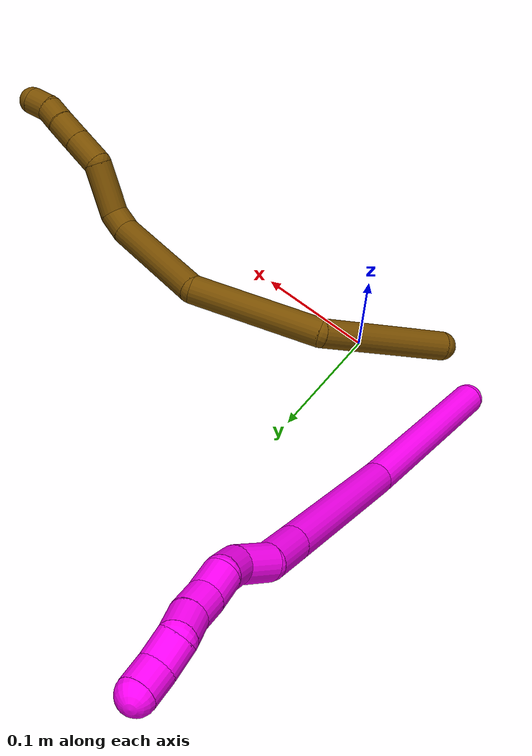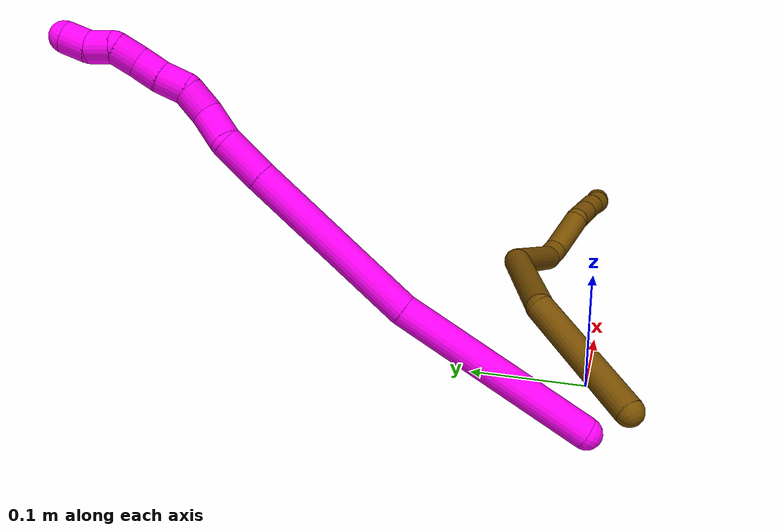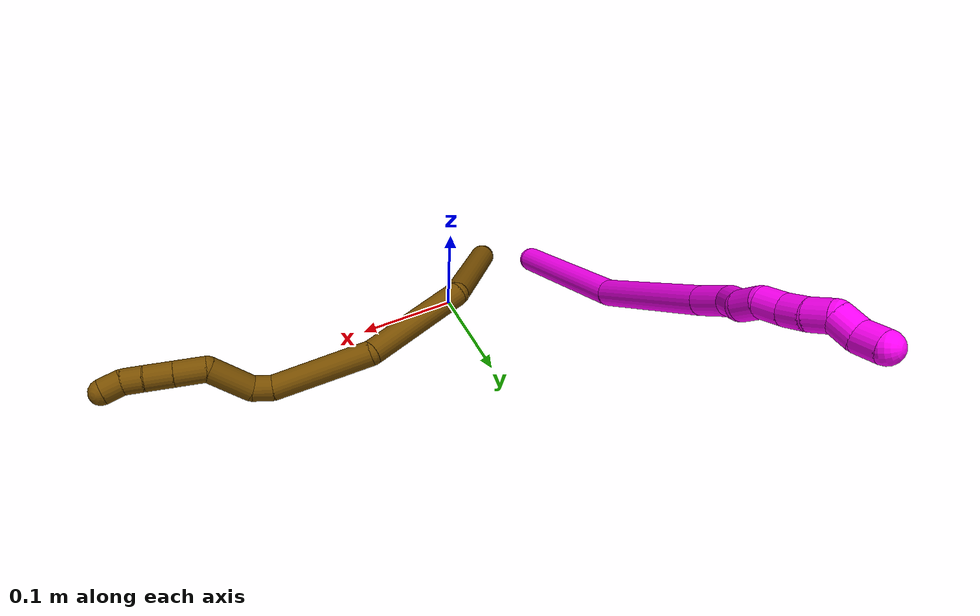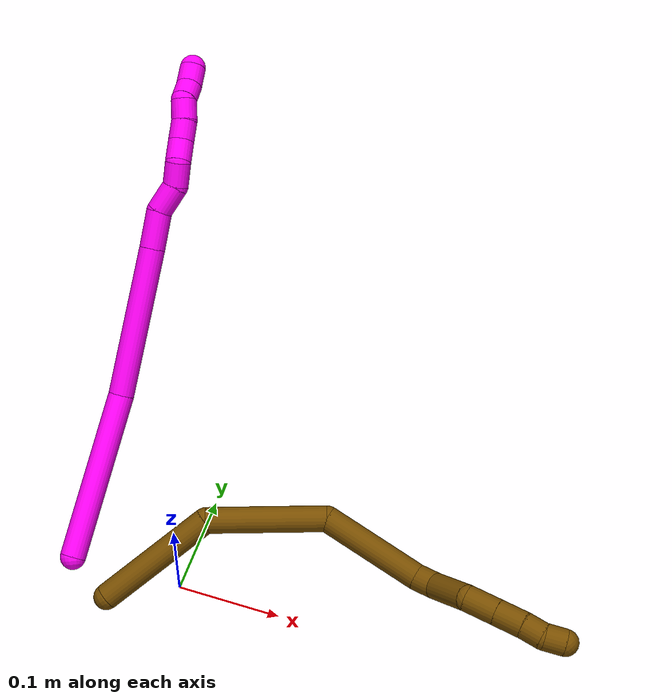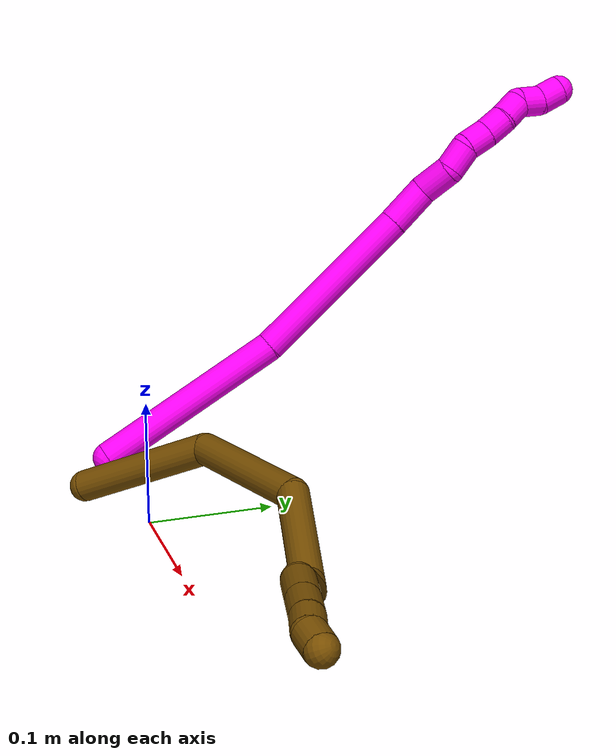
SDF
<sdf version="1.7">
 <world name="default">
  <model name="10">
   <static>0</static>
   <link name="10">
    <collision name="collision-cylinder-e_1_1_4">
     <pose>0.018148 0.02408 0.075574 -0.308458 0.224926 -0.035112</pose>
     <geometry><cylinder><radius>0.0125</radius><length>0.162734</length></cylinder></geometry>
     <surface>
      <friction><ode><mu>1.16</mu><mu2>1.16</mu2><slip1>0</slip1><slip2>0</slip2></ode></friction>
      <contact><ode><kp>1e+06</kp><kd>1</kd><max_vel>0</max_vel><min_depth>0.001</min_depth></ode></contact>
     </surface>
    </collision>
    <visual name="visual-cylinder-e_1_1_4">
     <pose>0.018148 0.02408 0.075574 -0.308458 0.224926 -0.035112</pose>
     <geometry><cylinder><radius>0.0125</radius><length>0.162734</length></cylinder></geometry>
     <material><ambient>1 0 0.964706 1</ambient></material>
    </visual>
    <collision name="collision-cylinder-e_2_4_5">
     <pose>0.059786 0.057768 0.219838 -0.13898 0.326552 -0.022932</pose>
     <geometry><cylinder><radius>0.0125</radius><length>0.146458</length></cylinder></geometry>
     <surface>
      <friction><ode><mu>1.16</mu><mu2>1.16</mu2><slip1>0</slip1><slip2>0</slip2></ode></friction>
      <contact><ode><kp>1e+06</kp><kd>1</kd><max_vel>0</max_vel><min_depth>0.001</min_depth></ode></contact>
     </surface>
    </collision>
    <visual name="visual-cylinder-e_2_4_5">
     <pose>0.059786 0.057768 0.219838 -0.13898 0.326552 -0.022932</pose>
     <geometry><cylinder><radius>0.0125</radius><length>0.146458</length></cylinder></geometry>
     <material><ambient>1 0 0.964706 1</ambient></material>
    </visual>
    <collision name="collision-cylinder-e_3_5_6">
     <pose>0.089522 0.069081 0.305886 -0.097869 0.343873 -0.017008</pose>
     <geometry><cylinder><radius>0.0125</radius><length>0.037051</length></cylinder></geometry>
     <surface>
      <friction><ode><mu>1.16</mu><mu2>1.16</mu2><slip1>0</slip1><slip2>0</slip2></ode></friction>
      <contact><ode><kp>1e+06</kp><kd>1</kd><max_vel>0</max_vel><min_depth>0.001</min_depth></ode></contact>
     </surface>
    </collision>
    <visual name="visual-cylinder-e_3_5_6">
     <pose>0.089522 0.069081 0.305886 -0.097869 0.343873 -0.017008</pose>
     <geometry><cylinder><radius>0.0125</radius><length>0.037051</length></cylinder></geometry>
     <material><ambient>1 0 0.964706 1</ambient></material>
    </visual>
    <collision name="collision-cylinder-e_4_6_7">
     <pose>0.104485 0.075241 0.333837 -0.39813 0.64895 -0.135506</pose>
     <geometry><cylinder><radius>0.0125</radius><length>0.02885</length></cylinder></geometry>
     <surface>
      <friction><ode><mu>1.16</mu><mu2>1.16</mu2><slip1>0</slip1><slip2>0</slip2></ode></friction>
      <contact><ode><kp>1e+06</kp><kd>1</kd><max_vel>0</max_vel><min_depth>0.001</min_depth></ode></contact>
     </surface>
    </collision>
    <visual name="visual-cylinder-e_4_6_7">
     <pose>0.104485 0.075241 0.333837 -0.39813 0.64895 -0.135506</pose>
     <geometry><cylinder><radius>0.0125</radius><length>0.02885</length></cylinder></geometry>
     <material><ambient>1 0 0.964706 1</ambient></material>
    </visual>
    <collision name="collision-cylinder-e_5_7_8">
     <pose>0.117569 0.079311 0.35524 0.03561 0.383746 0.006918</pose>
     <geometry><cylinder><radius>0.0125</radius><length>0.023328</length></cylinder></geometry>
     <surface>
      <friction><ode><mu>1.16</mu><mu2>1.16</mu2><slip1>0</slip1><slip2>0</slip2></ode></friction>
      <contact><ode><kp>1e+06</kp><kd>1</kd><max_vel>0</max_vel><min_depth>0.001</min_depth></ode></contact>
     </surface>
    </collision>
    <visual name="visual-cylinder-e_5_7_8">
     <pose>0.117569 0.079311 0.35524 0.03561 0.383746 0.006918</pose>
     <geometry><cylinder><radius>0.0125</radius><length>0.023328</length></cylinder></geometry>
     <material><ambient>1 0 0.964706 1</ambient></material>
    </visual>
    <collision name="collision-cylinder-e_6_8_9">
     <pose>0.122281 0.081694 0.37633 -0.262934 0.032341 -0.004277</pose>
     <geometry><cylinder><radius>0.0125</radius><length>0.021306</length></cylinder></geometry>
     <surface>
      <friction><ode><mu>1.16</mu><mu2>1.16</mu2><slip1>0</slip1><slip2>0</slip2></ode></friction>
      <contact><ode><kp>1e+06</kp><kd>1</kd><max_vel>0</max_vel><min_depth>0.001</min_depth></ode></contact>
     </surface>
    </collision>
    <visual name="visual-cylinder-e_6_8_9">
     <pose>0.122281 0.081694 0.37633 -0.262934 0.032341 -0.004277</pose>
     <geometry><cylinder><radius>0.0125</radius><length>0.021306</length></cylinder></geometry>
     <material><ambient>1 0 0.964706 1</ambient></material>
    </visual>
    <collision name="collision-cylinder-e_7_9_10">
     <pose>0.124333 0.086299 0.396383 -0.185916 0.1701 -0.015896</pose>
     <geometry><cylinder><radius>0.0125</radius><length>0.020177</length></cylinder></geometry>
     <surface>
      <friction><ode><mu>1.16</mu><mu2>1.16</mu2><slip1>0</slip1><slip2>0</slip2></ode></friction>
      <contact><ode><kp>1e+06</kp><kd>1</kd><max_vel>0</max_vel><min_depth>0.001</min_depth></ode></contact>
     </surface>
    </collision>
    <visual name="visual-cylinder-e_7_9_10">
     <pose>0.124333 0.086299 0.396383 -0.185916 0.1701 -0.015896</pose>
     <geometry><cylinder><radius>0.0125</radius><length>0.020177</length></cylinder></geometry>
     <material><ambient>1 0 0.964706 1</ambient></material>
    </visual>
    <collision name="collision-cylinder-e_8_10_11">
     <pose>0.126536 0.088562 0.416179 -0.042413 0.049257 -0.001045</pose>
     <geometry><cylinder><radius>0.0125</radius><length>0.020091</length></cylinder></geometry>
     <surface>
      <friction><ode><mu>1.16</mu><mu2>1.16</mu2><slip1>0</slip1><slip2>0</slip2></ode></friction>
      <contact><ode><kp>1e+06</kp><kd>1</kd><max_vel>0</max_vel><min_depth>0.001</min_depth></ode></contact>
     </surface>
    </collision>
    <visual name="visual-cylinder-e_8_10_11">
     <pose>0.126536 0.088562 0.416179 -0.042413 0.049257 -0.001045</pose>
     <geometry><cylinder><radius>0.0125</radius><length>0.020091</length></cylinder></geometry>
     <material><ambient>1 0 0.964706 1</ambient></material>
    </visual>
    <collision name="collision-cylinder-e_9_11_12">
     <pose>0.124748 0.094738 0.434062 -0.631617 -0.230178 0.075507</pose>
     <geometry><cylinder><radius>0.0125</radius><length>0.020004</length></cylinder></geometry>
     <surface>
      <friction><ode><mu>1.16</mu><mu2>1.16</mu2><slip1>0</slip1><slip2>0</slip2></ode></friction>
      <contact><ode><kp>1e+06</kp><kd>1</kd><max_vel>0</max_vel><min_depth>0.001</min_depth></ode></contact>
     </surface>
    </collision>
    <visual name="visual-cylinder-e_9_11_12">
     <pose>0.124748 0.094738 0.434062 -0.631617 -0.230178 0.075507</pose>
     <geometry><cylinder><radius>0.0125</radius><length>0.020004</length></cylinder></geometry>
     <material><ambient>1 0 0.964706 1</ambient></material>
    </visual>
    <collision name="collision-cylinder-e_10_12_2">
     <pose>0.122709 0.103835 0.451343 -0.341326 0.024314 -0.00419</pose>
     <geometry><cylinder><radius>0.0125</radius><length>0.020001</length></cylinder></geometry>
     <surface>
      <friction><ode><mu>1.16</mu><mu2>1.16</mu2><slip1>0</slip1><slip2>0</slip2></ode></friction>
      <contact><ode><kp>1e+06</kp><kd>1</kd><max_vel>0</max_vel><min_depth>0.001</min_depth></ode></contact>
     </surface>
    </collision>
    <visual name="visual-cylinder-e_10_12_2">
     <pose>0.122709 0.103835 0.451343 -0.341326 0.024314 -0.00419</pose>
     <geometry><cylinder><radius>0.0125</radius><length>0.020001</length></cylinder></geometry>
     <material><ambient>1 0 0.964706 1</ambient></material>
    </visual>
    <collision name="collision-sphere-2">
     <pose>0.122952 0.107181 0.460764 0 -0 0</pose>
     <geometry><sphere><radius>0.0125</radius></sphere></geometry>
     <surface>
      <friction><ode><mu>1.16</mu><mu2>1.16</mu2><slip1>0</slip1><slip2>0</slip2></ode></friction>
      <contact><ode><kp>1e+06</kp><kd>1</kd><max_vel>0</max_vel><min_depth>0.001</min_depth></ode></contact>
     </surface>
    </collision>
    <visual name="visual-sphere-2">
     <pose>0.122952 0.107181 0.460764 0 -0 0</pose>
     <geometry><sphere><radius>0.0125</radius></sphere></geometry>
     <material><ambient>1 0 0.964706 1</ambient></material>
    </visual>
    <collision name="collision-sphere-12">
     <pose>0.122466 0.100488 0.441922 0 -0 0</pose>
     <geometry><sphere><radius>0.0125</radius></sphere></geometry>
     <surface>
      <friction><ode><mu>1.16</mu><mu2>1.16</mu2><slip1>0</slip1><slip2>0</slip2></ode></friction>
      <contact><ode><kp>1e+06</kp><kd>1</kd><max_vel>0</max_vel><min_depth>0.001</min_depth></ode></contact>
     </surface>
    </collision>
    <visual name="visual-sphere-12">
     <pose>0.122466 0.100488 0.441922 0 -0 0</pose>
     <geometry><sphere><radius>0.0125</radius></sphere></geometry>
     <material><ambient>1 0 0.964706 1</ambient></material>
    </visual>
    <collision name="collision-sphere-11">
     <pose>0.12703 0.088988 0.426203 0 -0 0</pose>
     <geometry><sphere><radius>0.0125</radius></sphere></geometry>
     <surface>
      <friction><ode><mu>1.16</mu><mu2>1.16</mu2><slip1>0</slip1><slip2>0</slip2></ode></friction>
      <contact><ode><kp>1e+06</kp><kd>1</kd><max_vel>0</max_vel><min_depth>0.001</min_depth></ode></contact>
     </surface>
    </collision>
    <visual name="visual-sphere-11">
     <pose>0.12703 0.088988 0.426203 0 -0 0</pose>
     <geometry><sphere><radius>0.0125</radius></sphere></geometry>
     <material><ambient>1 0 0.964706 1</ambient></material>
    </visual>
    <collision name="collision-sphere-10">
     <pose>0.126041 0.088137 0.406155 0 -0 0</pose>
     <geometry><sphere><radius>0.0125</radius></sphere></geometry>
     <surface>
      <friction><ode><mu>1.16</mu><mu2>1.16</mu2><slip1>0</slip1><slip2>0</slip2></ode></friction>
      <contact><ode><kp>1e+06</kp><kd>1</kd><max_vel>0</max_vel><min_depth>0.001</min_depth></ode></contact>
     </surface>
    </collision>
    <visual name="visual-sphere-10">
     <pose>0.126041 0.088137 0.406155 0 -0 0</pose>
     <geometry><sphere><radius>0.0125</radius></sphere></geometry>
     <material><ambient>1 0 0.964706 1</ambient></material>
    </visual>
    <collision name="collision-sphere-9">
     <pose>0.122625 0.084461 0.386611 0 -0 0</pose>
     <geometry><sphere><radius>0.0125</radius></sphere></geometry>
     <surface>
      <friction><ode><mu>1.16</mu><mu2>1.16</mu2><slip1>0</slip1><slip2>0</slip2></ode></friction>
      <contact><ode><kp>1e+06</kp><kd>1</kd><max_vel>0</max_vel><min_depth>0.001</min_depth></ode></contact>
     </surface>
    </collision>
    <visual name="visual-sphere-9">
     <pose>0.122625 0.084461 0.386611 0 -0 0</pose>
     <geometry><sphere><radius>0.0125</radius></sphere></geometry>
     <material><ambient>1 0 0.964706 1</ambient></material>
    </visual>
    <collision name="collision-sphere-4">
     <pose>0.036295 0.04816 0.151148 0 -0 0</pose>
     <geometry><sphere><radius>0.0125</radius></sphere></geometry>
     <surface>
      <friction><ode><mu>1.16</mu><mu2>1.16</mu2><slip1>0</slip1><slip2>0</slip2></ode></friction>
      <contact><ode><kp>1e+06</kp><kd>1</kd><max_vel>0</max_vel><min_depth>0.001</min_depth></ode></contact>
     </surface>
    </collision>
    <visual name="visual-sphere-4">
     <pose>0.036295 0.04816 0.151148 0 -0 0</pose>
     <geometry><sphere><radius>0.0125</radius></sphere></geometry>
     <material><ambient>1 0 0.964706 1</ambient></material>
    </visual>
    <collision name="collision-sphere-1">
     <geometry><sphere><radius>0.0125</radius></sphere></geometry>
     <surface>
      <friction><ode><mu>1.16</mu><mu2>1.16</mu2><slip1>0</slip1><slip2>0</slip2></ode></friction>
      <contact><ode><kp>1e+06</kp><kd>1</kd><max_vel>0</max_vel><min_depth>0.001</min_depth></ode></contact>
     </surface>
    </collision>
    <visual name="visual-sphere-1">
     <geometry><sphere><radius>0.0125</radius></sphere></geometry>
     <material><ambient>1 0 0.964706 1</ambient></material>
    </visual>
    <collision name="collision-sphere-8">
     <pose>0.121936 0.078926 0.366048 0 -0 0</pose>
     <geometry><sphere><radius>0.0125</radius></sphere></geometry>
     <surface>
      <friction><ode><mu>1.16</mu><mu2>1.16</mu2><slip1>0</slip1><slip2>0</slip2></ode></friction>
      <contact><ode><kp>1e+06</kp><kd>1</kd><max_vel>0</max_vel><min_depth>0.001</min_depth></ode></contact>
     </surface>
    </collision>
    <visual name="visual-sphere-8">
     <pose>0.121936 0.078926 0.366048 0 -0 0</pose>
     <geometry><sphere><radius>0.0125</radius></sphere></geometry>
     <material><ambient>1 0 0.964706 1</ambient></material>
    </visual>
    <collision name="collision-sphere-5">
     <pose>0.083276 0.067377 0.288529 0 -0 0</pose>
     <geometry><sphere><radius>0.0125</radius></sphere></geometry>
     <surface>
      <friction><ode><mu>1.16</mu><mu2>1.16</mu2><slip1>0</slip1><slip2>0</slip2></ode></friction>
      <contact><ode><kp>1e+06</kp><kd>1</kd><max_vel>0</max_vel><min_depth>0.001</min_depth></ode></contact>
     </surface>
    </collision>
    <visual name="visual-sphere-5">
     <pose>0.083276 0.067377 0.288529 0 -0 0</pose>
     <geometry><sphere><radius>0.0125</radius></sphere></geometry>
     <material><ambient>1 0 0.964706 1</ambient></material>
    </visual>
    <collision name="collision-sphere-6">
     <pose>0.095767 0.070785 0.323243 0 -0 0</pose>
     <geometry><sphere><radius>0.0125</radius></sphere></geometry>
     <surface>
      <friction><ode><mu>1.16</mu><mu2>1.16</mu2><slip1>0</slip1><slip2>0</slip2></ode></friction>
      <contact><ode><kp>1e+06</kp><kd>1</kd><max_vel>0</max_vel><min_depth>0.001</min_depth></ode></contact>
     </surface>
    </collision>
    <visual name="visual-sphere-6">
     <pose>0.095767 0.070785 0.323243 0 -0 0</pose>
     <geometry><sphere><radius>0.0125</radius></sphere></geometry>
     <material><ambient>1 0 0.964706 1</ambient></material>
    </visual>
    <collision name="collision-sphere-7">
     <pose>0.113202 0.079697 0.344431 0 -0 0</pose>
     <geometry><sphere><radius>0.0125</radius></sphere></geometry>
     <surface>
      <friction><ode><mu>1.16</mu><mu2>1.16</mu2><slip1>0</slip1><slip2>0</slip2></ode></friction>
      <contact><ode><kp>1e+06</kp><kd>1</kd><max_vel>0</max_vel><min_depth>0.001</min_depth></ode></contact>
     </surface>
    </collision>
    <visual name="visual-sphere-7">
     <pose>0.113202 0.079697 0.344431 0 -0 0</pose>
     <geometry><sphere><radius>0.0125</radius></sphere></geometry>
     <material><ambient>1 0 0.964706 1</ambient></material>
    </visual>
    <inertial>
     <pose>0.066778 0.056386 0.23167 0 -0 0</pose>
     <mass>0.5</mass>
     <inertia>
      <ixx>0.000617</ixx>
      <ixy>0</ixy>
      <ixz>0</ixz>
      <iyy>0.000621</iyy>
      <iyz>0</iyz>
      <izz>-0.000283</izz>
     </inertia>
    </inertial>
   </link>
   <pose>-0.106675 -0.008488 0.014407 -0.752075 -0.728836 -0.178321</pose>
  </model>
  <model name="12">
   <static>0</static>
   <link name="12">
    <collision name="collision-cylinder-e_1_1_4">
     <pose>-0.007741 0.00769 0.058966 -0.129681 -0.129456 0.008417</pose>
     <geometry><cylinder><radius>0.0125</radius><length>0.119934</length></cylinder></geometry>
     <surface>
      <friction><ode><mu>1.16</mu><mu2>1.16</mu2><slip1>0</slip1><slip2>0</slip2></ode></friction>
      <contact><ode><kp>1e+06</kp><kd>1</kd><max_vel>0</max_vel><min_depth>0.001</min_depth></ode></contact>
     </surface>
    </collision>
    <visual name="visual-cylinder-e_1_1_4">
     <pose>-0.007741 0.00769 0.058966 -0.129681 -0.129456 0.008417</pose>
     <geometry><cylinder><radius>0.0125</radius><length>0.119934</length></cylinder></geometry>
     <material><ambient>0.466667 0.301961 0 1</ambient></material>
    </visual>
    <collision name="collision-cylinder-e_2_4_5">
     <pose>0.011442 0.03144 0.1661 -0.321825 0.487576 -0.080703</pose>
     <geometry><cylinder><radius>0.0125</radius><length>0.114944</length></cylinder></geometry>
     <surface>
      <friction><ode><mu>1.16</mu><mu2>1.16</mu2><slip1>0</slip1><slip2>0</slip2></ode></friction>
      <contact><ode><kp>1e+06</kp><kd>1</kd><max_vel>0</max_vel><min_depth>0.001</min_depth></ode></contact>
     </surface>
    </collision>
    <visual name="visual-cylinder-e_2_4_5">
     <pose>0.011442 0.03144 0.1661 -0.321825 0.487576 -0.080703</pose>
     <geometry><cylinder><radius>0.0125</radius><length>0.114944</length></cylinder></geometry>
     <material><ambient>0.466667 0.301961 0 1</ambient></material>
    </visual>
    <collision name="collision-cylinder-e_3_5_6">
     <pose>0.082462 0.057319 0.236132 -0.422096 1.07292 -0.253421</pose>
     <geometry><cylinder><radius>0.0125</radius><length>0.100376</length></cylinder></geometry>
     <surface>
      <friction><ode><mu>1.16</mu><mu2>1.16</mu2><slip1>0</slip1><slip2>0</slip2></ode></friction>
      <contact><ode><kp>1e+06</kp><kd>1</kd><max_vel>0</max_vel><min_depth>0.001</min_depth></ode></contact>
     </surface>
    </collision>
    <visual name="visual-cylinder-e_3_5_6">
     <pose>0.082462 0.057319 0.236132 -0.422096 1.07292 -0.253421</pose>
     <geometry><cylinder><radius>0.0125</radius><length>0.100376</length></cylinder></geometry>
     <material><ambient>0.466667 0.301961 0 1</ambient></material>
    </visual>
    <collision name="collision-cylinder-e_4_6_7">
     <pose>0.134511 0.065317 0.264073 0.291136 0.897533 0.140957</pose>
     <geometry><cylinder><radius>0.0125</radius><length>0.020347</length></cylinder></geometry>
     <surface>
      <friction><ode><mu>1.16</mu><mu2>1.16</mu2><slip1>0</slip1><slip2>0</slip2></ode></friction>
      <contact><ode><kp>1e+06</kp><kd>1</kd><max_vel>0</max_vel><min_depth>0.001</min_depth></ode></contact>
     </surface>
    </collision>
    <visual name="visual-cylinder-e_4_6_7">
     <pose>0.134511 0.065317 0.264073 0.291136 0.897533 0.140957</pose>
     <geometry><cylinder><radius>0.0125</radius><length>0.020347</length></cylinder></geometry>
     <material><ambient>0.466667 0.301961 0 1</ambient></material>
    </visual>
    <collision name="collision-cylinder-e_5_7_8">
     <pose>0.155238 0.049284 0.283526 0.815659 0.579492 0.256211</pose>
     <geometry><cylinder><radius>0.0125</radius><length>0.046651</length></cylinder></geometry>
     <surface>
      <friction><ode><mu>1.16</mu><mu2>1.16</mu2><slip1>0</slip1><slip2>0</slip2></ode></friction>
      <contact><ode><kp>1e+06</kp><kd>1</kd><max_vel>0</max_vel><min_depth>0.001</min_depth></ode></contact>
     </surface>
    </collision>
    <visual name="visual-cylinder-e_5_7_8">
     <pose>0.155238 0.049284 0.283526 0.815659 0.579492 0.256211</pose>
     <geometry><cylinder><radius>0.0125</radius><length>0.046651</length></cylinder></geometry>
     <material><ambient>0.466667 0.301961 0 1</ambient></material>
    </visual>
    <collision name="collision-cylinder-e_6_8_9">
     <pose>0.180394 0.034453 0.305968 0.068104 0.937821 0.034511</pose>
     <geometry><cylinder><radius>0.0125</radius><length>0.030718</length></cylinder></geometry>
     <surface>
      <friction><ode><mu>1.16</mu><mu2>1.16</mu2><slip1>0</slip1><slip2>0</slip2></ode></friction>
      <contact><ode><kp>1e+06</kp><kd>1</kd><max_vel>0</max_vel><min_depth>0.001</min_depth></ode></contact>
     </surface>
    </collision>
    <visual name="visual-cylinder-e_6_8_9">
     <pose>0.180394 0.034453 0.305968 0.068104 0.937821 0.034511</pose>
     <geometry><cylinder><radius>0.0125</radius><length>0.030718</length></cylinder></geometry>
     <material><ambient>0.466667 0.301961 0 1</ambient></material>
    </visual>
    <collision name="collision-cylinder-e_7_9_10">
     <pose>0.203641 0.033292 0.322956 0.068445 0.939504 0.034756</pose>
     <geometry><cylinder><radius>0.0125</radius><length>0.026913</length></cylinder></geometry>
     <surface>
      <friction><ode><mu>1.16</mu><mu2>1.16</mu2><slip1>0</slip1><slip2>0</slip2></ode></friction>
      <contact><ode><kp>1e+06</kp><kd>1</kd><max_vel>0</max_vel><min_depth>0.001</min_depth></ode></contact>
     </surface>
    </collision>
    <visual name="visual-cylinder-e_7_9_10">
     <pose>0.203641 0.033292 0.322956 0.068445 0.939504 0.034756</pose>
     <geometry><cylinder><radius>0.0125</radius><length>0.026913</length></cylinder></geometry>
     <material><ambient>0.466667 0.301961 0 1</ambient></material>
    </visual>
    <collision name="collision-cylinder-e_8_10_11">
     <pose>0.223068 0.032618 0.336117 0.024928 1.02176 0.013973</pose>
     <geometry><cylinder><radius>0.0125</radius><length>0.020077</length></cylinder></geometry>
     <surface>
      <friction><ode><mu>1.16</mu><mu2>1.16</mu2><slip1>0</slip1><slip2>0</slip2></ode></friction>
      <contact><ode><kp>1e+06</kp><kd>1</kd><max_vel>0</max_vel><min_depth>0.001</min_depth></ode></contact>
     </surface>
    </collision>
    <visual name="visual-cylinder-e_8_10_11">
     <pose>0.223068 0.032618 0.336117 0.024928 1.02176 0.013973</pose>
     <geometry><cylinder><radius>0.0125</radius><length>0.020077</length></cylinder></geometry>
     <material><ambient>0.466667 0.301961 0 1</ambient></material>
    </visual>
    <collision name="collision-cylinder-e_9_11_2">
     <pose>0.238644 0.035021 0.348046 -0.361885 0.77534 -0.149127</pose>
     <geometry><cylinder><radius>0.0125</radius><length>0.020038</length></cylinder></geometry>
     <surface>
      <friction><ode><mu>1.16</mu><mu2>1.16</mu2><slip1>0</slip1><slip2>0</slip2></ode></friction>
      <contact><ode><kp>1e+06</kp><kd>1</kd><max_vel>0</max_vel><min_depth>0.001</min_depth></ode></contact>
     </surface>
    </collision>
    <visual name="visual-cylinder-e_9_11_2">
     <pose>0.238644 0.035021 0.348046 -0.361885 0.77534 -0.149127</pose>
     <geometry><cylinder><radius>0.0125</radius><length>0.020038</length></cylinder></geometry>
     <material><ambient>0.466667 0.301961 0 1</ambient></material>
    </visual>
    <collision name="collision-sphere-2">
     <pose>0.245657 0.037554 0.354738 0 -0 0</pose>
     <geometry><sphere><radius>0.0125</radius></sphere></geometry>
     <surface>
      <friction><ode><mu>1.16</mu><mu2>1.16</mu2><slip1>0</slip1><slip2>0</slip2></ode></friction>
      <contact><ode><kp>1e+06</kp><kd>1</kd><max_vel>0</max_vel><min_depth>0.001</min_depth></ode></contact>
     </surface>
    </collision>
    <visual name="visual-sphere-2">
     <pose>0.245657 0.037554 0.354738 0 -0 0</pose>
     <geometry><sphere><radius>0.0125</radius></sphere></geometry>
     <material><ambient>0.466667 0.301961 0 1</ambient></material>
    </visual>
    <collision name="collision-sphere-11">
     <pose>0.231631 0.032487 0.341354 0 -0 0</pose>
     <geometry><sphere><radius>0.0125</radius></sphere></geometry>
     <surface>
      <friction><ode><mu>1.16</mu><mu2>1.16</mu2><slip1>0</slip1><slip2>0</slip2></ode></friction>
      <contact><ode><kp>1e+06</kp><kd>1</kd><max_vel>0</max_vel><min_depth>0.001</min_depth></ode></contact>
     </surface>
    </collision>
    <visual name="visual-sphere-11">
     <pose>0.231631 0.032487 0.341354 0 -0 0</pose>
     <geometry><sphere><radius>0.0125</radius></sphere></geometry>
     <material><ambient>0.466667 0.301961 0 1</ambient></material>
    </visual>
    <collision name="collision-sphere-10">
     <pose>0.214504 0.032748 0.330879 0 -0 0</pose>
     <geometry><sphere><radius>0.0125</radius></sphere></geometry>
     <surface>
      <friction><ode><mu>1.16</mu><mu2>1.16</mu2><slip1>0</slip1><slip2>0</slip2></ode></friction>
      <contact><ode><kp>1e+06</kp><kd>1</kd><max_vel>0</max_vel><min_depth>0.001</min_depth></ode></contact>
     </surface>
    </collision>
    <visual name="visual-sphere-10">
     <pose>0.214504 0.032748 0.330879 0 -0 0</pose>
     <geometry><sphere><radius>0.0125</radius></sphere></geometry>
     <material><ambient>0.466667 0.301961 0 1</ambient></material>
    </visual>
    <collision name="collision-sphere-9">
     <pose>0.192778 0.033835 0.315033 0 -0 0</pose>
     <geometry><sphere><radius>0.0125</radius></sphere></geometry>
     <surface>
      <friction><ode><mu>1.16</mu><mu2>1.16</mu2><slip1>0</slip1><slip2>0</slip2></ode></friction>
      <contact><ode><kp>1e+06</kp><kd>1</kd><max_vel>0</max_vel><min_depth>0.001</min_depth></ode></contact>
     </surface>
    </collision>
    <visual name="visual-sphere-9">
     <pose>0.192778 0.033835 0.315033 0 -0 0</pose>
     <geometry><sphere><radius>0.0125</radius></sphere></geometry>
     <material><ambient>0.466667 0.301961 0 1</ambient></material>
    </visual>
    <collision name="collision-sphere-4">
     <pose>-0.015483 0.01538 0.117932 0 -0 0</pose>
     <geometry><sphere><radius>0.0125</radius></sphere></geometry>
     <surface>
      <friction><ode><mu>1.16</mu><mu2>1.16</mu2><slip1>0</slip1><slip2>0</slip2></ode></friction>
      <contact><ode><kp>1e+06</kp><kd>1</kd><max_vel>0</max_vel><min_depth>0.001</min_depth></ode></contact>
     </surface>
    </collision>
    <visual name="visual-sphere-4">
     <pose>-0.015483 0.01538 0.117932 0 -0 0</pose>
     <geometry><sphere><radius>0.0125</radius></sphere></geometry>
     <material><ambient>0.466667 0.301961 0 1</ambient></material>
    </visual>
    <collision name="collision-sphere-1">
     <geometry><sphere><radius>0.0125</radius></sphere></geometry>
     <surface>
      <friction><ode><mu>1.16</mu><mu2>1.16</mu2><slip1>0</slip1><slip2>0</slip2></ode></friction>
      <contact><ode><kp>1e+06</kp><kd>1</kd><max_vel>0</max_vel><min_depth>0.001</min_depth></ode></contact>
     </surface>
    </collision>
    <visual name="visual-sphere-1">
     <geometry><sphere><radius>0.0125</radius></sphere></geometry>
     <material><ambient>0.466667 0.301961 0 1</ambient></material>
    </visual>
    <collision name="collision-sphere-8">
     <pose>0.168011 0.035071 0.296904 0 -0 0</pose>
     <geometry><sphere><radius>0.0125</radius></sphere></geometry>
     <surface>
      <friction><ode><mu>1.16</mu><mu2>1.16</mu2><slip1>0</slip1><slip2>0</slip2></ode></friction>
      <contact><ode><kp>1e+06</kp><kd>1</kd><max_vel>0</max_vel><min_depth>0.001</min_depth></ode></contact>
     </surface>
    </collision>
    <visual name="visual-sphere-8">
     <pose>0.168011 0.035071 0.296904 0 -0 0</pose>
     <geometry><sphere><radius>0.0125</radius></sphere></geometry>
     <material><ambient>0.466667 0.301961 0 1</ambient></material>
    </visual>
    <collision name="collision-sphere-5">
     <pose>0.038367 0.0475 0.214268 0 -0 0</pose>
     <geometry><sphere><radius>0.0125</radius></sphere></geometry>
     <surface>
      <friction><ode><mu>1.16</mu><mu2>1.16</mu2><slip1>0</slip1><slip2>0</slip2></ode></friction>
      <contact><ode><kp>1e+06</kp><kd>1</kd><max_vel>0</max_vel><min_depth>0.001</min_depth></ode></contact>
     </surface>
    </collision>
    <visual name="visual-sphere-5">
     <pose>0.038367 0.0475 0.214268 0 -0 0</pose>
     <geometry><sphere><radius>0.0125</radius></sphere></geometry>
     <material><ambient>0.466667 0.301961 0 1</ambient></material>
    </visual>
    <collision name="collision-sphere-6">
     <pose>0.126557 0.067137 0.257996 0 -0 0</pose>
     <geometry><sphere><radius>0.0125</radius></sphere></geometry>
     <surface>
      <friction><ode><mu>1.16</mu><mu2>1.16</mu2><slip1>0</slip1><slip2>0</slip2></ode></friction>
      <contact><ode><kp>1e+06</kp><kd>1</kd><max_vel>0</max_vel><min_depth>0.001</min_depth></ode></contact>
     </surface>
    </collision>
    <visual name="visual-sphere-6">
     <pose>0.126557 0.067137 0.257996 0 -0 0</pose>
     <geometry><sphere><radius>0.0125</radius></sphere></geometry>
     <material><ambient>0.466667 0.301961 0 1</ambient></material>
    </visual>
    <collision name="collision-sphere-7">
     <pose>0.142465 0.063496 0.270149 0 -0 0</pose>
     <geometry><sphere><radius>0.0125</radius></sphere></geometry>
     <surface>
      <friction><ode><mu>1.16</mu><mu2>1.16</mu2><slip1>0</slip1><slip2>0</slip2></ode></friction>
      <contact><ode><kp>1e+06</kp><kd>1</kd><max_vel>0</max_vel><min_depth>0.001</min_depth></ode></contact>
     </surface>
    </collision>
    <visual name="visual-sphere-7">
     <pose>0.142465 0.063496 0.270149 0 -0 0</pose>
     <geometry><sphere><radius>0.0125</radius></sphere></geometry>
     <material><ambient>0.466667 0.301961 0 1</ambient></material>
    </visual>
    <inertial>
     <pose>0.077851 0.034457 0.200559 0 -0 0</pose>
     <mass>0.5</mass>
     <inertia>
      <ixx>0.000321</ixx>
      <ixy>0</ixy>
      <ixz>0</ixz>
      <iyy>0.000364</iyy>
      <iyz>0</iyz>
      <izz>-0.000173</izz>
     </inertia>
    </inertial>
   </link>
   <pose>-0.059588 -0.037692 0.012443 -1.0283 0.355599 -0.71345</pose>
  </model>
 </world>
</sdf>
